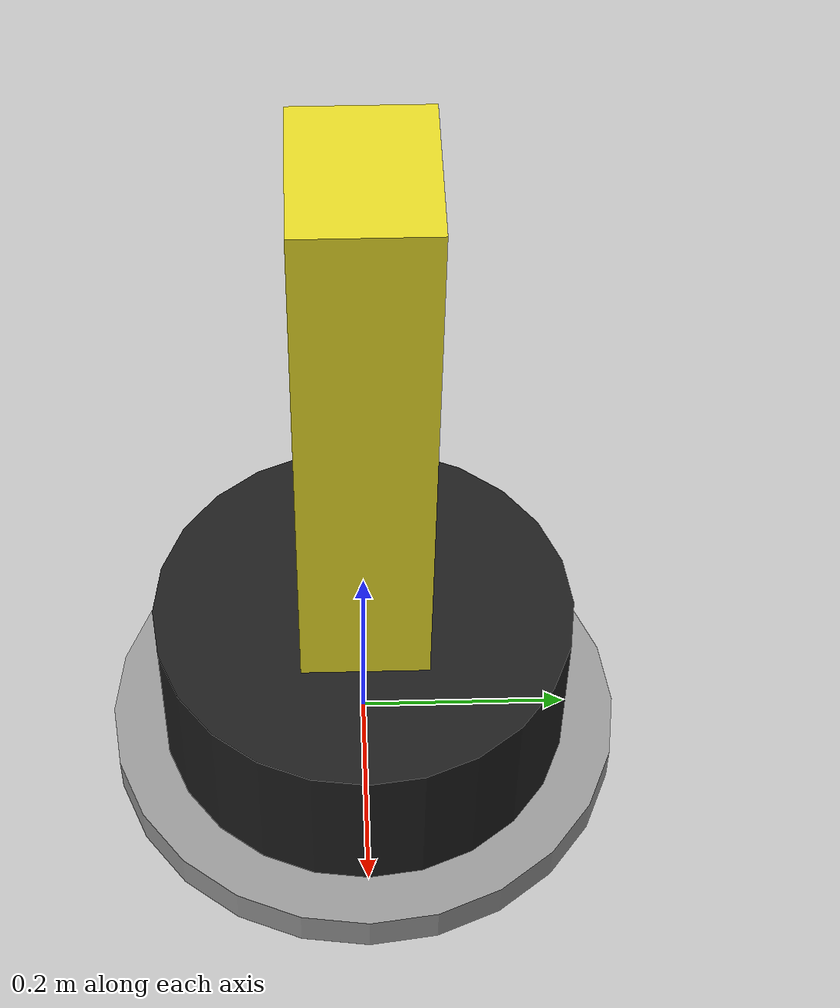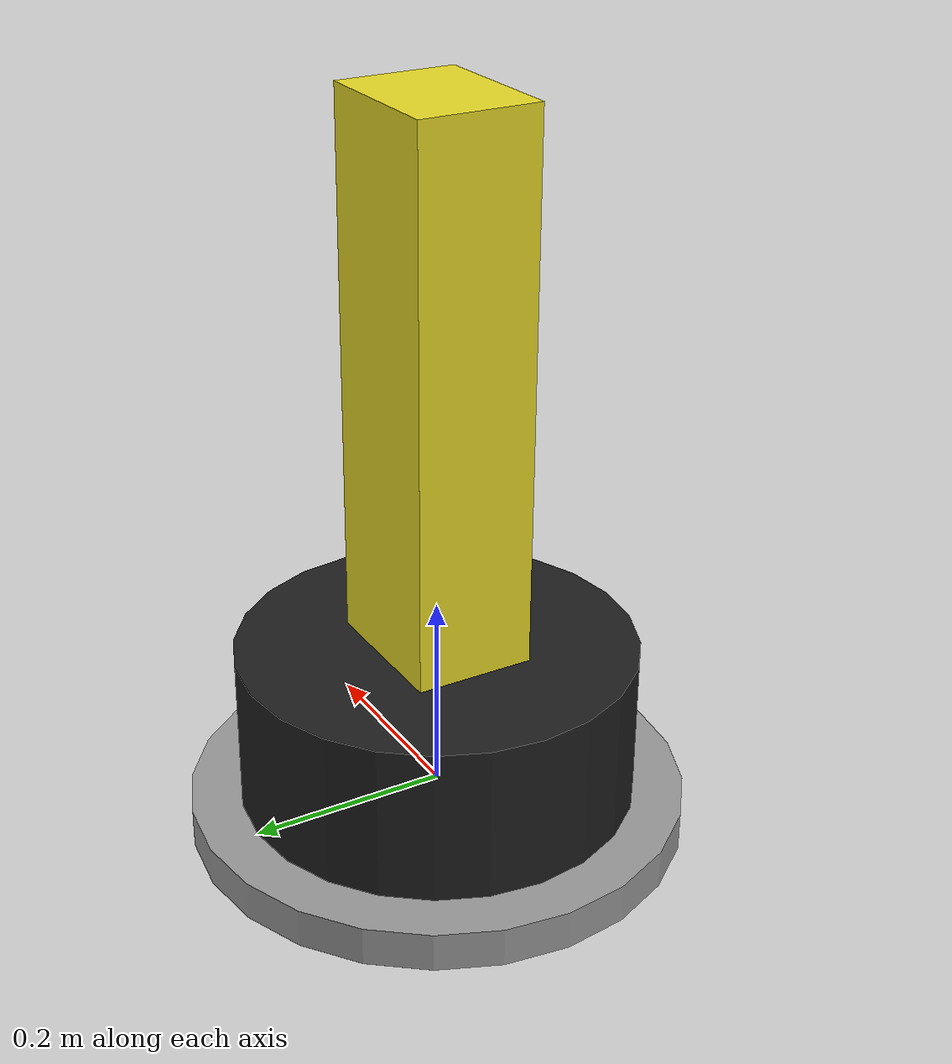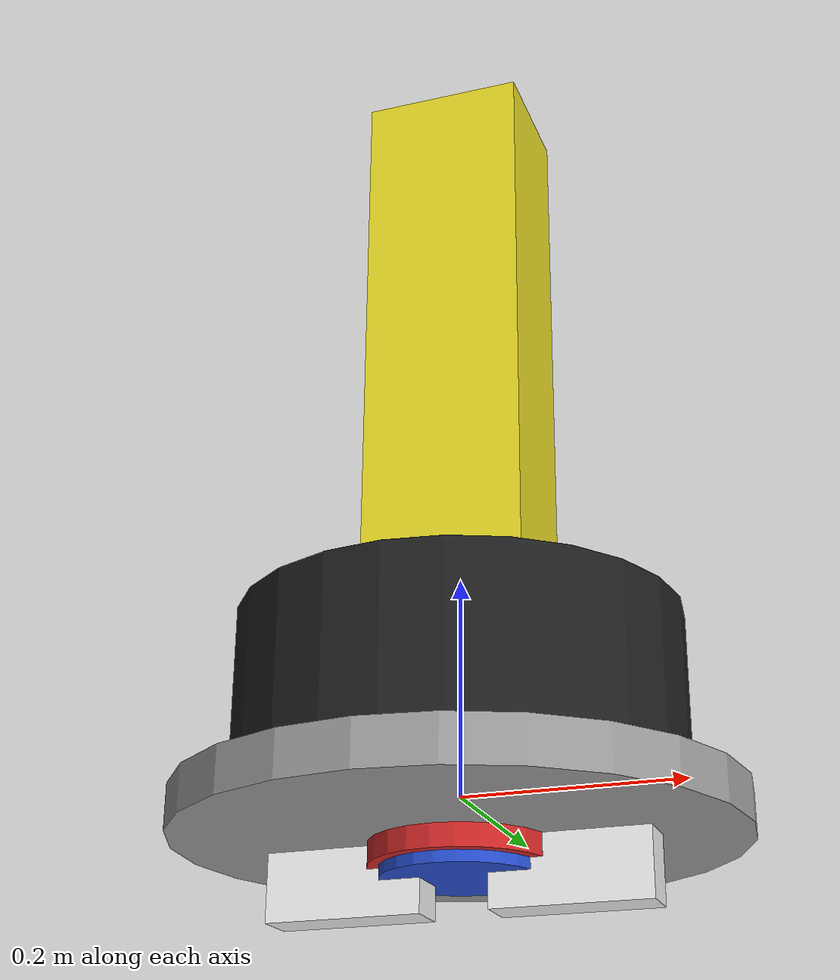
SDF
<?xml version='1.0'?>
<sdf version='1.6'>
  <model name='simple_3dof_arm'>
    <static>false</static>

    <!-- Base link (larger, more visible) -->
    <link name='base_link'>
      <pose>0 0 0.08 0 0 0</pose>
      <inertial>
        <mass>8.0</mass>
        <inertia>
          <ixx>0.2</ixx>
          <iyy>0.2</iyy>
          <izz>0.2</izz>
        </inertia>
      </inertial>
      <visual name='base_visual'>
        <cast_shadows>1</cast_shadows>
        <geometry>
          <cylinder>
            <radius>0.20</radius>
            <length>0.16</length>
          </cylinder>
        </geometry>
        <material>
          <script>
            <uri>file://media/materials/scripts/gazebo.material</uri>
            <name>Gazebo/Black</name>
          </script>
        </material>
      </visual>
      <collision name='base_collision'>
        <geometry>
          <cylinder>
            <radius>0.20</radius>
            <length>0.16</length>
          </cylinder>
        </geometry>
      </collision>

      <!-- Base platform visual -->
      <visual name='base_platform'>
        <pose>0 0 -0.1 0 0 0</pose>
        <cast_shadows>1</cast_shadows>
        <geometry>
          <cylinder>
            <radius>0.25</radius>
            <length>0.04</length>
          </cylinder>
        </geometry>
        <material>
          <script>
            <uri>file://media/materials/scripts/gazebo.material</uri>
            <name>Gazebo/Grey</name>
          </script>
        </material>
      </visual>
    </link>

    <!-- Shoulder link (MUCH LARGER - main arm segment) -->
    <link name='shoulder_link'>
      <inertial>
        <mass>3.5</mass>
        <inertia>
          <ixx>0.05</ixx>
          <iyy>0.05</iyy>
          <izz>0.05</izz>
        </inertia>
      </inertial>

      <!-- Joint connector visual -->
      <visual name='shoulder_joint_visual'>
        <pose>0 0 0 0 0 0</pose>
        <cast_shadows>1</cast_shadows>
        <geometry>
          <cylinder>
            <radius>0.08</radius>
            <length>0.12</length>
          </cylinder>
        </geometry>
        <material>
          <script>
            <uri>file://media/materials/scripts/gazebo.material</uri>
            <name>Gazebo/Red</name>
          </script>
        </material>
      </visual>

      <!-- Main arm segment visual -->
      <visual name='shoulder_visual'>
        <pose>0 0 0.35 0 0 0</pose>
        <cast_shadows>1</cast_shadows>
        <geometry>
          <box>
            <size>0.15 0.12 0.7</size>
          </box>
        </geometry>
        <material>
          <script>
            <uri>file://media/materials/scripts/gazebo.material</uri>
            <name>Gazebo/Yellow</name>
          </script>
        </material>
      </visual>
      <collision name='shoulder_collision'>
        <pose>0 0 0.35 0 0 0</pose>
        <geometry>
          <box>
            <size>0.15 0.12 0.7</size>
          </box>
        </geometry>
      </collision>
    </link>

    <!-- Elbow link (LARGER - forearm) -->
    <link name='elbow_link'>
      <inertial>
        <mass>2.5</mass>
        <inertia>
          <ixx>0.03</ixx>
          <iyy>0.03</iyy>
          <izz>0.03</izz>
        </inertia>
      </inertial>

      <!-- Elbow joint connector -->
      <visual name='elbow_joint_visual'>
        <pose>0 0 0 0 0 0</pose>
        <cast_shadows>1</cast_shadows>
        <geometry>
          <cylinder>
            <radius>0.07</radius>
            <length>0.14</length>
          </cylinder>
        </geometry>
        <material>
          <script>
            <uri>file://media/materials/scripts/gazebo.material</uri>
            <name>Gazebo/Blue</name>
          </script>
        </material>
      </visual>

      <!-- Forearm visual -->
      <visual name='elbow_visual'>
        <pose>0 0 0.30 0 0 0</pose>
        <cast_shadows>1</cast_shadows>
        <geometry>
          <box>
            <size>0.12 0.10 0.6</size>
          </box>
        </geometry>
        <material>
          <script>
            <uri>file://media/materials/scripts/gazebo.material</uri>
            <name>Gazebo/Green</name>
          </script>
        </material>
      </visual>
      <collision name='elbow_collision'>
        <pose>0 0 0.30 0 0 0</pose>
        <geometry>
          <box>
            <size>0.12 0.10 0.6</size>
          </box>
        </geometry>
      </collision>
    </link>

    <!-- Wrist / end link (LARGER with visible camera) -->
    <link name='wrist_link'>
      <inertial>
        <mass>1.0</mass>
        <inertia>
          <ixx>0.01</ixx>
          <iyy>0.01</iyy>
          <izz>0.01</izz>
        </inertia>
      </inertial>

      <!-- Wrist joint connector -->
      <visual name='wrist_joint_visual'>
        <pose>0 0 0 0 0 0</pose>
        <cast_shadows>1</cast_shadows>
        <geometry>
          <cylinder>
            <radius>0.06</radius>
            <length>0.10</length>
          </cylinder>
        </geometry>
        <material>
          <script>
            <uri>file://media/materials/scripts/gazebo.material</uri>
            <name>Gazebo/Purple</name>
          </script>
        </material>
      </visual>

      <!-- Wrist body -->
      <visual name='wrist_visual'>
        <pose>0 0 0.10 0 0 0</pose>
        <cast_shadows>1</cast_shadows>
        <geometry>
          <sphere>
            <radius>0.08</radius>
          </sphere>
        </geometry>
        <material>
          <script>
            <uri>file://media/materials/scripts/gazebo.material</uri>
            <name>Gazebo/Orange</name>
          </script>
        </material>
      </visual>

      <!-- Camera housing visual -->
      <visual name='camera_housing'>
        <pose>0 0 0.15 0 0 0</pose>
        <cast_shadows>1</cast_shadows>
        <geometry>
          <box>
            <size>0.08 0.06 0.04</size>
          </box>
        </geometry>
        <material>
          <script>
            <uri>file://media/materials/scripts/gazebo.material</uri>
            <name>Gazebo/Black</name>
          </script>
        </material>
      </visual>

      <collision name='wrist_collision'>
        <geometry>
          <sphere>
            <radius>0.08</radius>
          </sphere>
        </geometry>
      </collision>

      <!-- Camera sensor mounted on wrist_link -->
      <sensor name='wrist_camera' type='camera'>
        <always_on>1</always_on>
        <update_rate>30</update_rate>
        <pose>0 0 0.15 0 0 0</pose>
        <camera>
          <horizontal_fov>0.785398</horizontal_fov>
          <image>
            <width>640</width>
            <height>480</height>
            <format>R8G8B8</format>
          </image>
          <clip>
            <near>0.01</near>
            <far>100</far>
          </clip>
        </camera>
        <visualize>true</visualize>
      </sensor>
    </link>

    <!-- LARGER two-finger gripper (much more visible) -->
    <link name='left_finger'>
      <inertial>
        <mass>0.2</mass>
        <inertia>
          <ixx>0.001</ixx>
          <iyy>0.001</iyy>
          <izz>0.001</izz>
        </inertia>
      </inertial>
      <visual name='lf_visual'>
        <pose>0.10 0 0 0 0 0</pose>
        <cast_shadows>1</cast_shadows>
        <geometry>
          <box>
            <size>0.14 0.04 0.20</size>
          </box>
        </geometry>
        <material>
          <script>
            <uri>file://media/materials/scripts/gazebo.material</uri>
            <name>Gazebo/White</name>
          </script>
        </material>
      </visual>
      <collision name='lf_collision'>
        <pose>0.10 0 0</pose>
        <geometry>
          <box>
            <size>0.14 0.04 0.20</size>
          </box>
        </geometry>
      </collision>
    </link>
    <link name='right_finger'>
      <inertial>
        <mass>0.2</mass>
        <inertia>
          <ixx>0.001</ixx>
          <iyy>0.001</iyy>
          <izz>0.001</izz>
        </inertia>
      </inertial>
      <visual name='rf_visual'>
        <pose>-0.10 0 0 0 0 0</pose>
        <cast_shadows>1</cast_shadows>
        <geometry>
          <box>
            <size>0.14 0.04 0.20</size>
          </box>
        </geometry>
        <material>
          <script>
            <uri>file://media/materials/scripts/gazebo.material</uri>
            <name>Gazebo/White</name>
          </script>
        </material>
      </visual>
      <collision name='rf_collision'>
        <pose>-0.10 0 0</pose>
        <geometry>
          <box>
            <size>0.14 0.04 0.20</size>
          </box>
        </geometry>
      </collision>
    </link>

    <!-- Joints -->
    <joint name='joint_base' type='revolute'>
      <parent>base_link</parent>
      <child>shoulder_link</child>
      <pose>0 0 0 0 0 0</pose>
      <axis>
        <xyz>0 0 1</xyz>
        <limit>
          <lower>-3.14159</lower>
          <upper>3.14159</upper>
        </limit>
        <dynamics>
          <damping>0.5</damping>
        </dynamics>
      </axis>
    </joint>

    <joint name='joint_shoulder' type='revolute'>
      <parent>shoulder_link</parent>
      <child>elbow_link</child>
      <pose>0 0 0 0 0 0</pose>
      <axis>
        <xyz>0 1 0</xyz>
        <limit>
          <lower>-1.57</lower>
          <upper>1.57</upper>
        </limit>
        <dynamics>
          <damping>0.2</damping>
        </dynamics>
      </axis>
    </joint>

    <joint name='joint_elbow' type='revolute'>
      <parent>elbow_link</parent>
      <child>wrist_link</child>
      <pose>0 0 0 0 0 0</pose>
      <axis>
        <xyz>0 1 0</xyz>
        <limit>
          <lower>-1.57</lower>
          <upper>1.57</upper>
        </limit>
        <dynamics>
          <damping>0.2</damping>
        </dynamics>
      </axis>
    </joint>

    <!-- Fixed joints for fingers to wrist -->
    <joint name='joint_left_finger' type='fixed'>
      <parent>wrist_link</parent>
      <child>left_finger</child>
      <pose>0 0.06 0.15 0 0 0</pose>
    </joint>
    <joint name='joint_right_finger' type='fixed'>
      <parent>wrist_link</parent>
      <child>right_finger</child>
      <pose>0 -0.06 0.15 0 0 0</pose>
    </joint>

    <!-- Gazebo ROS Control Plugin -->
    <plugin name="gazebo_ros_control" filename="libgazebo_ros_control.so">
      <robotNamespace>/simple_3dof_arm</robotNamespace>
      <robotSimType>gazebo_ros_control/DefaultRobotHWSim</robotSimType>
    </plugin>

    <!-- Transmissions for ROS control -->
    <transmission name="trans_base">
      <type>transmission_interface/SimpleTransmission</type>
      <joint name="joint_base">
        <hardwareInterface>hardware_interface/PositionJointInterface</hardwareInterface>
      </joint>
      <actuator name="motor_base">
        <hardwareInterface>hardware_interface/PositionJointInterface</hardwareInterface>
        <mechanicalReduction>1</mechanicalReduction>
      </actuator>
    </transmission>

    <transmission name="trans_shoulder">
      <type>transmission_interface/SimpleTransmission</type>
      <joint name="joint_shoulder">
        <hardwareInterface>hardware_interface/PositionJointInterface</hardwareInterface>
      </joint>
      <actuator name="motor_shoulder">
        <hardwareInterface>hardware_interface/PositionJointInterface</hardwareInterface>
        <mechanicalReduction>1</mechanicalReduction>
      </actuator>
    </transmission>

    <transmission name="trans_elbow">
      <type>transmission_interface/SimpleTransmission</type>
      <joint name="joint_elbow">
        <hardwareInterface>hardware_interface/PositionJointInterface</hardwareInterface>
      </joint>
      <actuator name="motor_elbow">
        <hardwareInterface>hardware_interface/PositionJointInterface</hardwareInterface>
        <mechanicalReduction>1</mechanicalReduction>
      </actuator>
    </transmission>

  </model>
</sdf>
